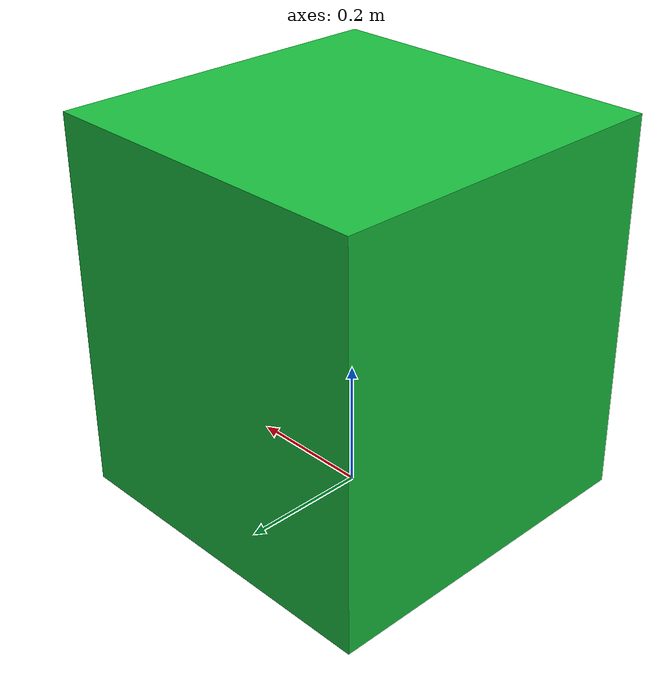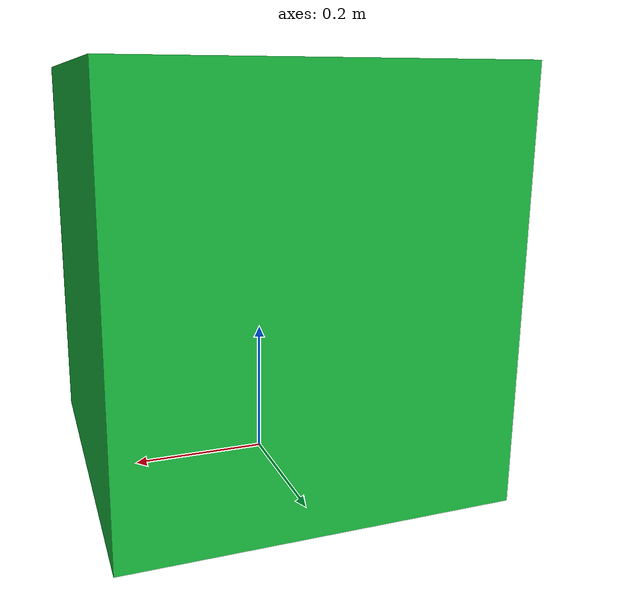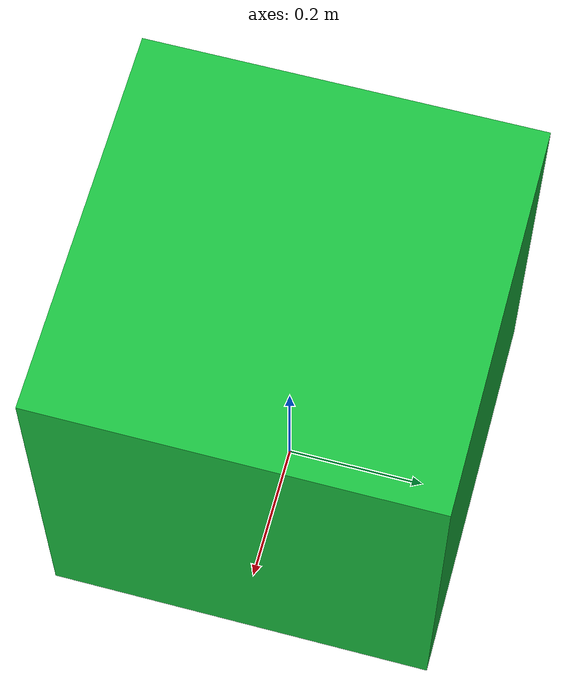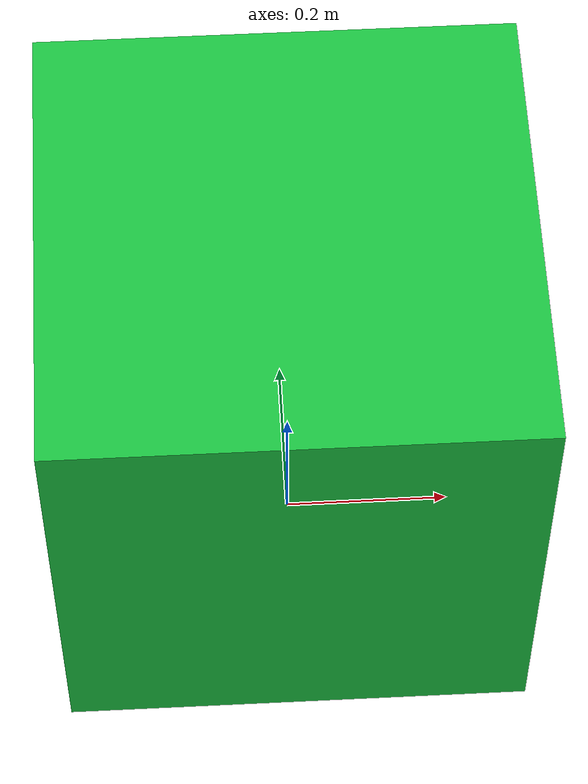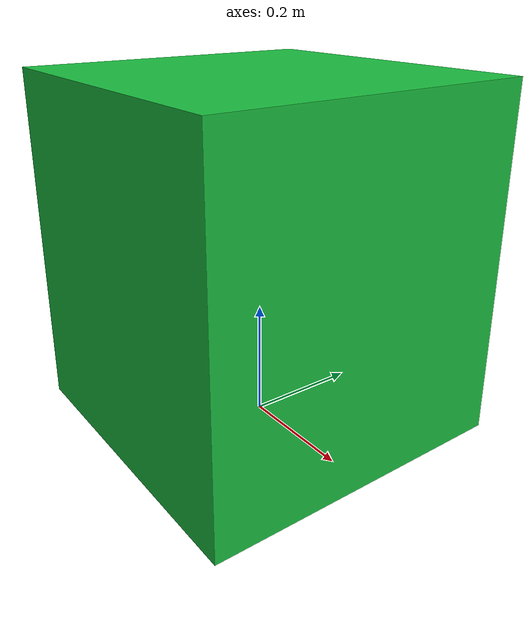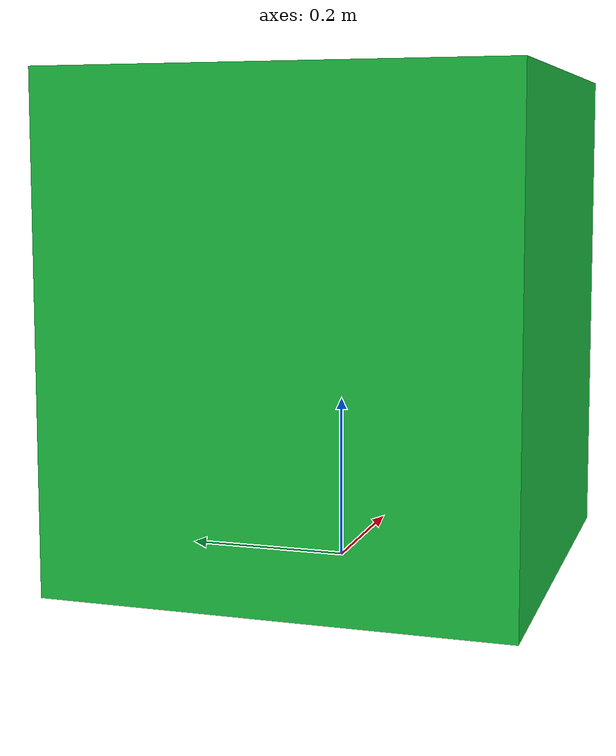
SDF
<?xml version="1.0"?>
<sdf version="1.9">
  <model name="imperative_dynamic_box">
    <pose>0 0 0.30 0 0 0</pose>
    <link name="link">
      <gravity>false</gravity>
      <kinematic>true</kinematic>
      <inertial><mass>100.0</mass><inertia><ixx>3.0</ixx><iyy>3.0</iyy><izz>3.0</izz></inertia></inertial>
      <collision name="collision">
        <geometry><box><size>0.55 0.55 0.60</size></box></geometry>
      </collision>
      <visual name="visual">
        <geometry><box><size>0.55 0.55 0.60</size></box></geometry>
        <material><ambient>0.10 0.75 0.25 1</ambient><diffuse>0.10 0.75 0.25 1</diffuse></material>
      </visual>
    </link>
    <plugin filename="ignition-gazebo-velocity-control-system"
            name="ignition::gazebo::systems::VelocityControl"/>
  </model>
</sdf>
